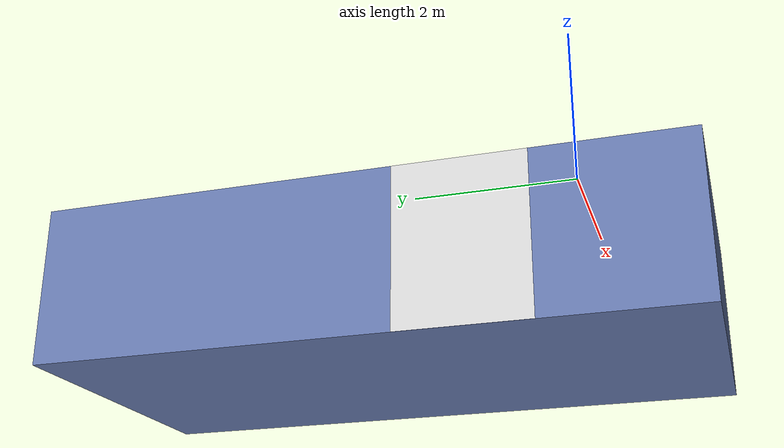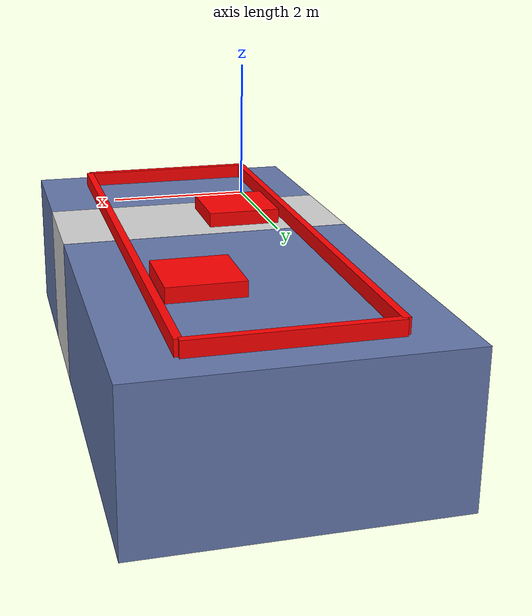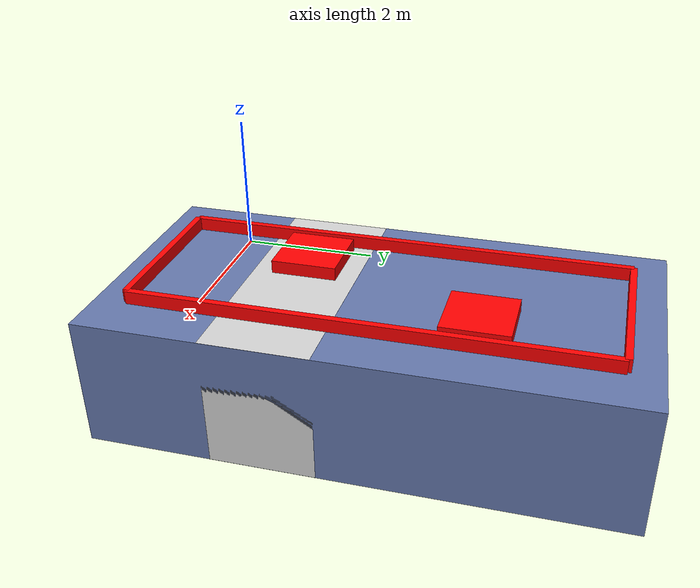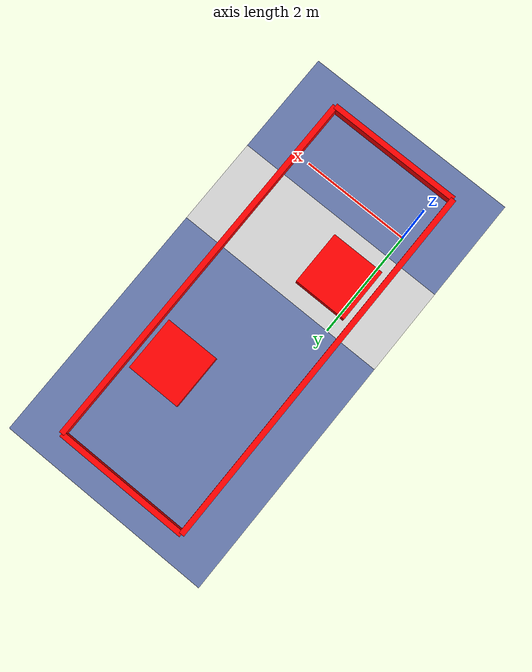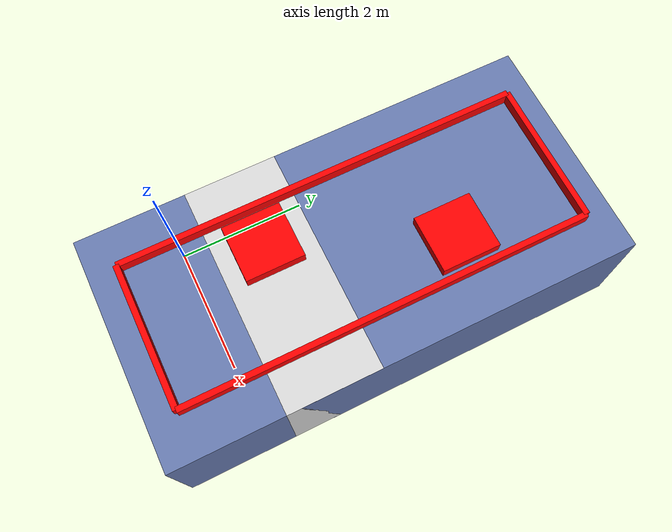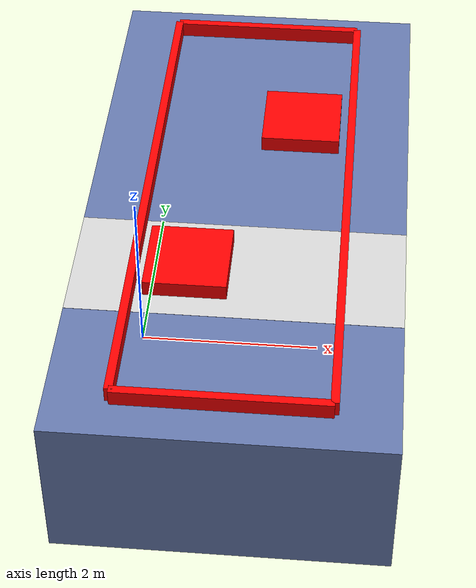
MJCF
<mujoco model="scene">
    <compiler angle="radian" />
    <asset>
        <texture name="a" builtin="gradient" height="100" rgb1="1 1 1" rgb2="0 0 0" type="skybox"
            width="100" />
        <texture name="texplane0" type="2d" builtin="checker" rgb1="0.0 0.0 0.36"
            rgb2="0.79 .94 .99" width="100" height="100" mark="cross" markrgb=".8 .8 .8" />
        <texture name="texplane1" type="2d" builtin="checker" rgb1=".52 .08 0" rgb2="1 .85 .84"
            width="100" height="100" mark="cross" markrgb=".8 .8 .8" />
        <texture name="texplane2" type="2d" builtin="checker" rgb1="0.0 0.0 0.36"
            rgb2="0.79 .94 .99" width="100" height="100" mark="cross" markrgb=".8 .8 .8" />
        <texture name="texplane3" type="2d" builtin="checker" rgb1="0 0 0" rgb2="0.8 0.0 0.8"
            width="100" height="100" mark="cross" markrgb=".8 .8 .8" />
        <texture name="texplane4" type="2d" builtin="flat" rgb1="0.1215686275 0.4470588235 0.6"
            width="100" height="100" />
        <texture name="texplane5" type="2d" builtin="checker" rgb1="1.0 1.0 1.0"
            rgb2="0.66 0.66 0.66" width="100" height="100" />
        <material name="matplane0" reflectance="0.2" texture="texplane0" texrepeat="1 1"
            texuniform="true" />
        <material name="matplane1" reflectance="0.2" texture="texplane1" texrepeat="1 1"
            texuniform="true" />
        <material name="matplane2" reflectance="0.2" texture="texplane2" texrepeat="1 1"
            texuniform="true" />
        <material name="matplane3" reflectance="0.2" texture="texplane3" texrepeat="1 1"
            texuniform="true" />
        <material name="matplane4" reflectance="0.2" texture="texplane4" texrepeat="1 1"
            texuniform="true" />
        <material name="matplane5" reflectance="0.2" texture="texplane5" texrepeat="1 1"
            texuniform="true" />
    </asset>
    <visual>
        <headlight ambient="0.6 0.6 0.6" diffuse="0.5 0.5 0.5" specular="0.2 0.2 0.2" />
        <map znear="0.001" />
    </visual>
    <worldbody>
        <body name="obstacle_wall_down">
            <geom name="obstacle_wall_down" type="box" pos="1 -1 0.1" euler="0.0 0.0 0.0"
                size="1.25 0.05 0.1" rgba="1.0 0.0 0.0 1" />
        </body>
        <body name="obstacle_wall_up">
            <geom name="obstacle_wall_up" type="box" pos="1 6 0.1" euler="0.0 0.0 0.0"
                size="1.25 0.05 0.1" rgba="1.0 0.0 0.0 1" />
        </body>
        <body name="obstacle_wall_left">
            <geom name="obstacle_wall_left" type="box" pos="-.25 2.5 0.1" euler="0.0 0.0 0.0"
                size="0.05 3.5 0.1" rgba="1.0 0.0 0.0 1" />
        </body>
        <body name="obstacle_wall_right">
            <geom name="obstacle_wall_right" type="box" pos="2.25 2.5 0.1" euler="0.0 0.0 0.0"
                size="0.05 3.5 0.1" rgba="1.0 0.0 0.0 1" />
        </body>
        <geom friction="1 0.0 0.01" pos="1.0 2.5  -1" size="2 4 1" name="floor0" contype="1"
            condim="6" euler="0 0 0" type="box" material="matplane0" />
        <geom friction="0.08 0.0 0.001" pos="1.0 1.2  -0.999" size="2 0.8 1" name="floor1"
            contype="1" condim="6" euler="0 0 0" type="box" material="matplane5" />
        <body name="obstacle_0">
            <geom type="box" size="0.5 0.5 0.1" rgba="1 0 0 1" pos="1.6 4.0  0.1" name="obstacle_0" />
        </body>
        <body name="obstacle_1">
            <geom type="box" size="0.5 0.5 0.1" rgba="1 0 0 1" pos="0.4 1.2  0.1" name="obstacle_1" />
        </body>
    </worldbody>
</mujoco>
